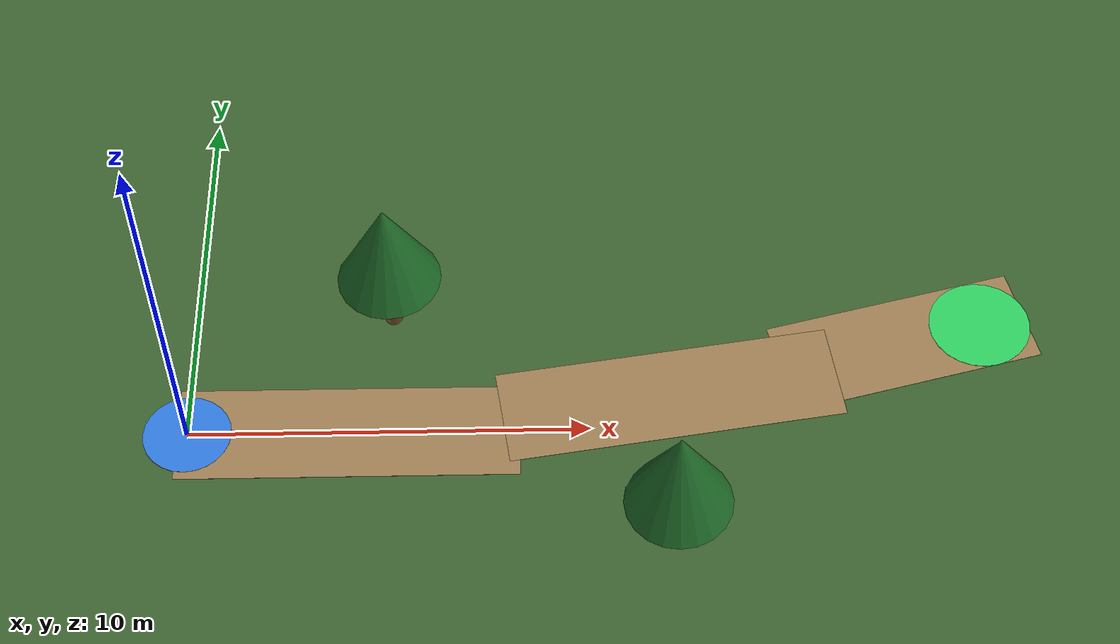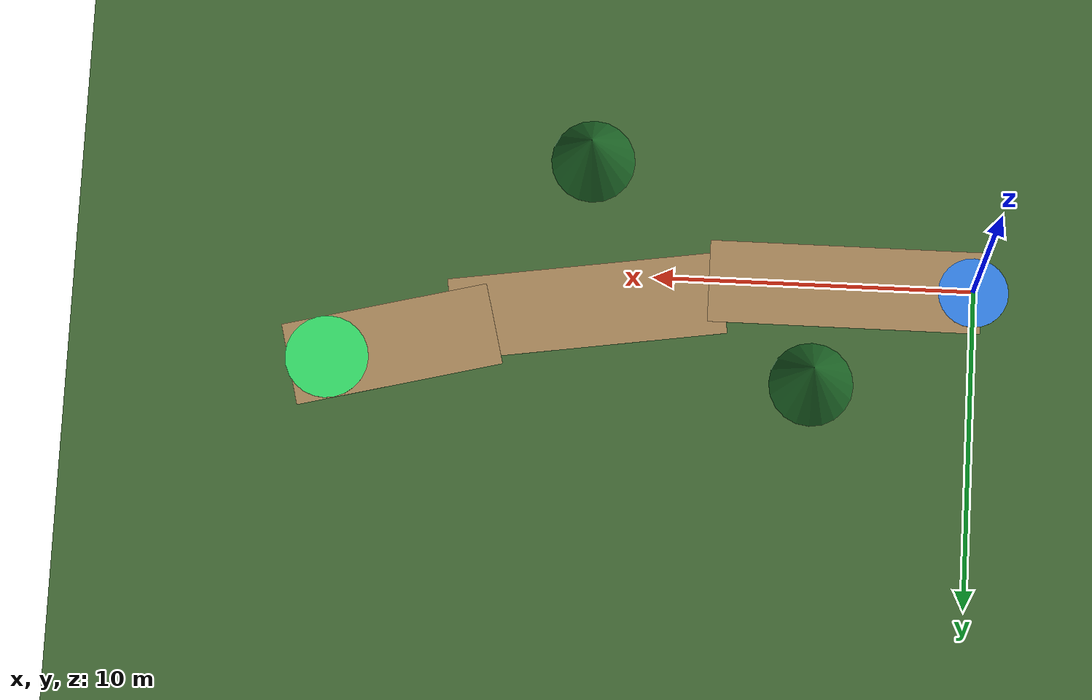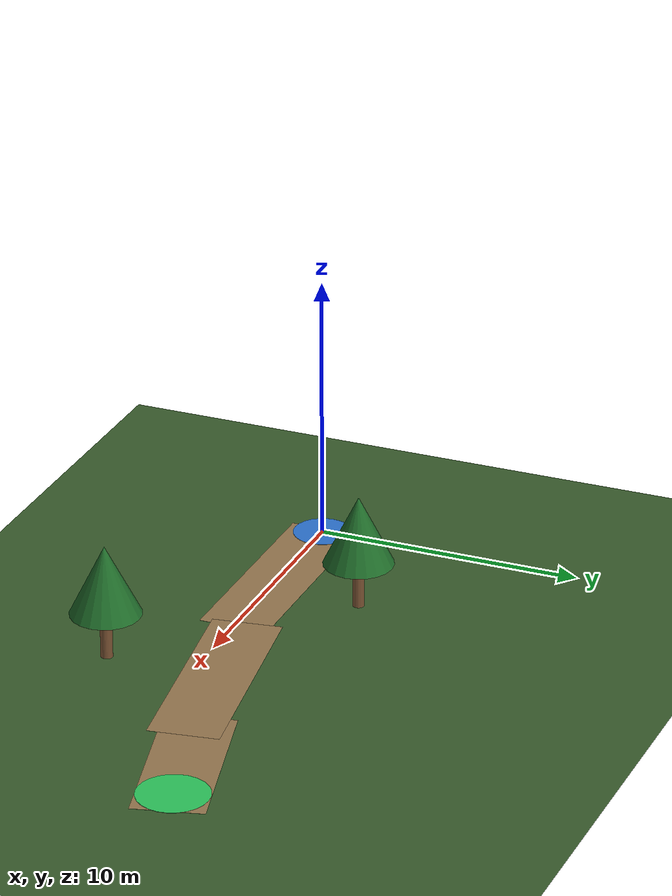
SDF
<?xml version="1.0" ?>
<sdf version="1.8">
  <world name="forest_open_trail">
    <physics name="1ms" type="ignored">
      <max_step_size>0.004</max_step_size>
      <real_time_factor>1.0</real_time_factor>
    </physics>

    <plugin filename="gz-sim-physics-system" name="gz::sim::systems::Physics" />
    <plugin filename="gz-sim-user-commands-system" name="gz::sim::systems::UserCommands" />
    <plugin filename="gz-sim-scene-broadcaster-system" name="gz::sim::systems::SceneBroadcaster" />
    <plugin filename="gz-sim-sensors-system" name="gz::sim::systems::Sensors" />
    <plugin filename="gz-sim-imu-system" name="gz::sim::systems::Imu" />
    <plugin filename="gz-sim-navsat-system" name="gz::sim::systems::NavSat" />

    <light type="directional" name="sun">
      <cast_shadows>true</cast_shadows>
      <pose>0 0 35 0.5 0.3 0.2</pose>
      <diffuse>0.92 0.90 0.82 1.0</diffuse>
      <specular>0.3 0.3 0.3 1.0</specular>
      <direction>-0.4 0.2 -1.0</direction>
    </light>

    <scene>
      <ambient>0.60 0.65 0.60 1.0</ambient>
      <background>0.5 0.7 0.9 1.0</background>
      <shadows>true</shadows>
    </scene>

    <!-- Ground -->
    <model name="ground">
      <static>true</static>
      <link name="link">
        <collision name="col">
          <geometry><plane><normal>0 0 1</normal><size>80 80</size></plane></geometry>
        </collision>
        <visual name="vis">
          <geometry><plane><normal>0 0 1</normal><size>80 80</size></plane></geometry>
          <material><ambient>0.20 0.35 0.16 1.0</ambient><diffuse>0.25 0.40 0.20 1.0</diffuse></material>
        </visual>
      </link>
    </model>

    <!-- Open Trail Segments -->
    <model name="trail_1"><static>true</static><pose>4.0 0.0 0.002 0 0 0</pose>
      <link name="link"><visual name="v"><geometry><box><size>8.5 2.6 0.004</size></box></geometry>
      <material><ambient>0.55 0.42 0.28 1.0</ambient><diffuse>0.65 0.52 0.35 1.0</diffuse></material></visual></link>
    </model>

    <model name="trail_2"><static>true</static><pose>12.0 1.0 0.002 0 0 0.15</pose>
      <link name="link"><visual name="v"><geometry><box><size>8.5 2.6 0.004</size></box></geometry>
      <material><ambient>0.55 0.42 0.28 1.0</ambient><diffuse>0.65 0.52 0.35 1.0</diffuse></material></visual></link>
    </model>

    <model name="trail_3"><static>true</static><pose>18.0 2.5 0.002 0 0 0.25</pose>
      <link name="link"><visual name="v"><geometry><box><size>6.5 2.6 0.004</size></box></geometry>
      <material><ambient>0.55 0.42 0.28 1.0</ambient><diffuse>0.65 0.52 0.35 1.0</diffuse></material></visual></link>
    </model>

    <!-- Point A & Point B -->
    <model name="point_a"><static>true</static><pose>0 0 0.006 0 0 0</pose><link name="l"><visual name="v"><geometry><cylinder><radius>1.1</radius><length>0.01</length></cylinder></geometry><material><ambient>0.2 0.5 0.9 1</ambient><diffuse>0.2 0.5 0.9 1</diffuse></material></visual></link></model>
    <model name="point_b"><static>true</static><pose>20 3.0 0.006 0 0 0</pose><link name="l"><visual name="v"><geometry><cylinder><radius>1.3</radius><length>0.01</length></cylinder></geometry><material><ambient>0.2 0.85 0.4 1</ambient><diffuse>0.2 0.85 0.4 1</diffuse></material></visual></link></model>

    <!-- Sparse Trees -->
    <model name="tree_1"><static>true</static><pose>5.0 3.5 0 0 0 0</pose><link name="l"><visual name="t"><pose>0 0 1.1 0 0 0</pose><geometry><cylinder><radius>0.22</radius><length>2.2</length></cylinder></geometry><material><ambient>0.35 0.22 0.12 1</ambient><diffuse>0.45 0.3 0.18 1</diffuse></material></visual><visual name="c"><pose>0 0 3 0 0 0</pose><geometry><cone><radius>1.3</radius><length>2.6</length></cone></geometry><material><ambient>0.08 0.32 0.1 1</ambient><diffuse>0.12 0.42 0.16 1</diffuse></material></visual><collision name="col"><pose>0 0 1.1 0 0 0</pose><geometry><cylinder><radius>0.25</radius><length>2.2</length></cylinder></geometry></collision></link></model>
    <model name="tree_2"><static>true</static><pose>12.0 -3.2 0 0 0 0</pose><link name="l"><visual name="t"><pose>0 0 1.1 0 0 0</pose><geometry><cylinder><radius>0.22</radius><length>2.2</length></cylinder></geometry><material><ambient>0.35 0.22 0.12 1</ambient><diffuse>0.45 0.3 0.18 1</diffuse></material></visual><visual name="c"><pose>0 0 3 0 0 0</pose><geometry><cone><radius>1.3</radius><length>2.6</length></cone></geometry><material><ambient>0.08 0.32 0.1 1</ambient><diffuse>0.12 0.42 0.16 1</diffuse></material></visual><collision name="col"><pose>0 0 1.1 0 0 0</pose><geometry><cylinder><radius>0.25</radius><length>2.2</length></cylinder></geometry></collision></link></model>
  </world>
</sdf>
